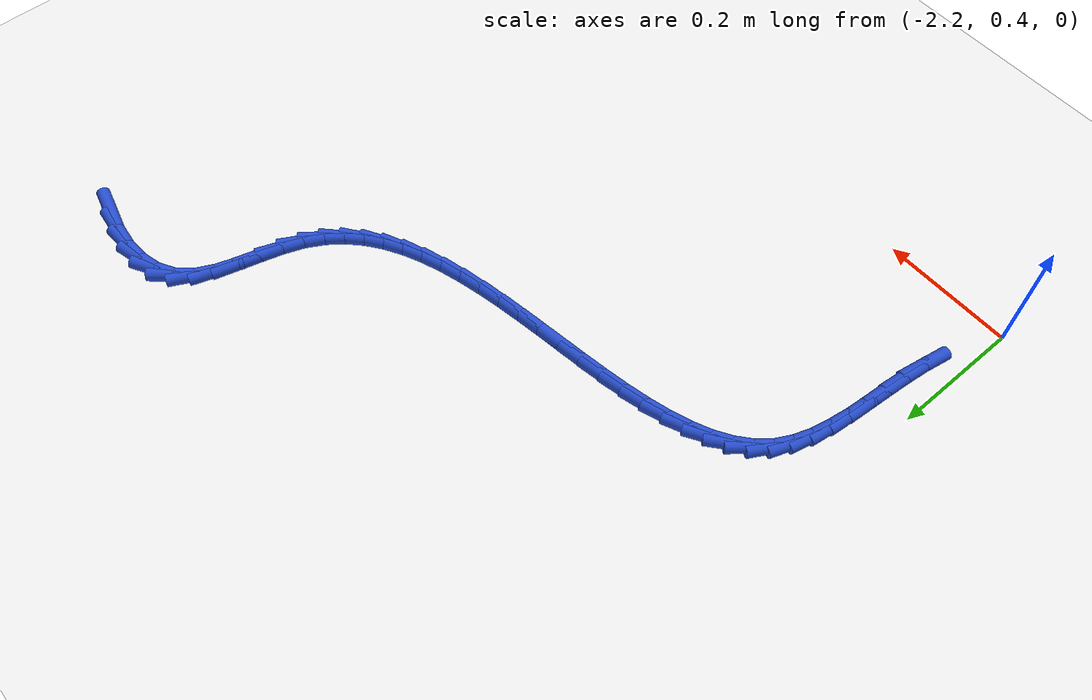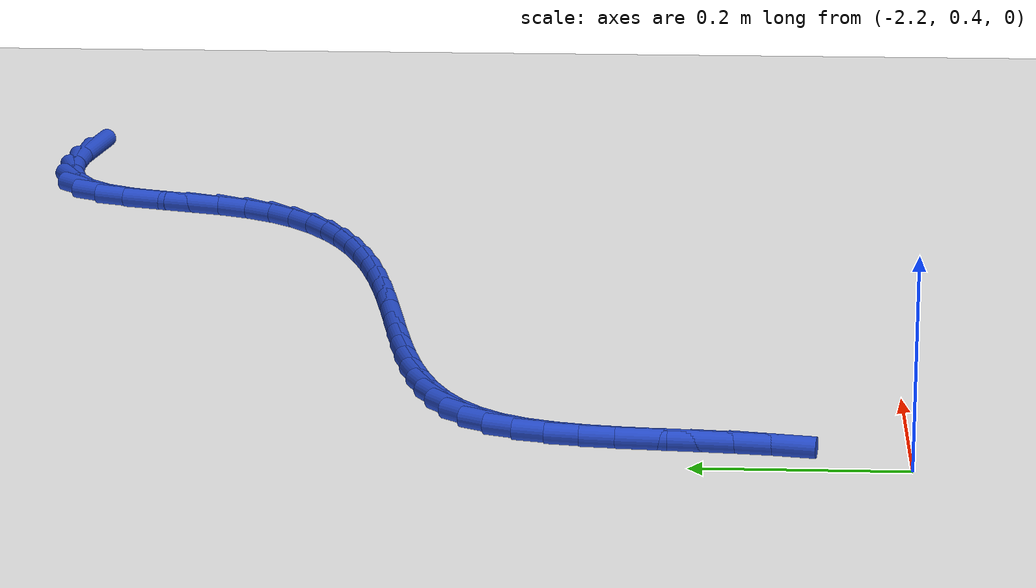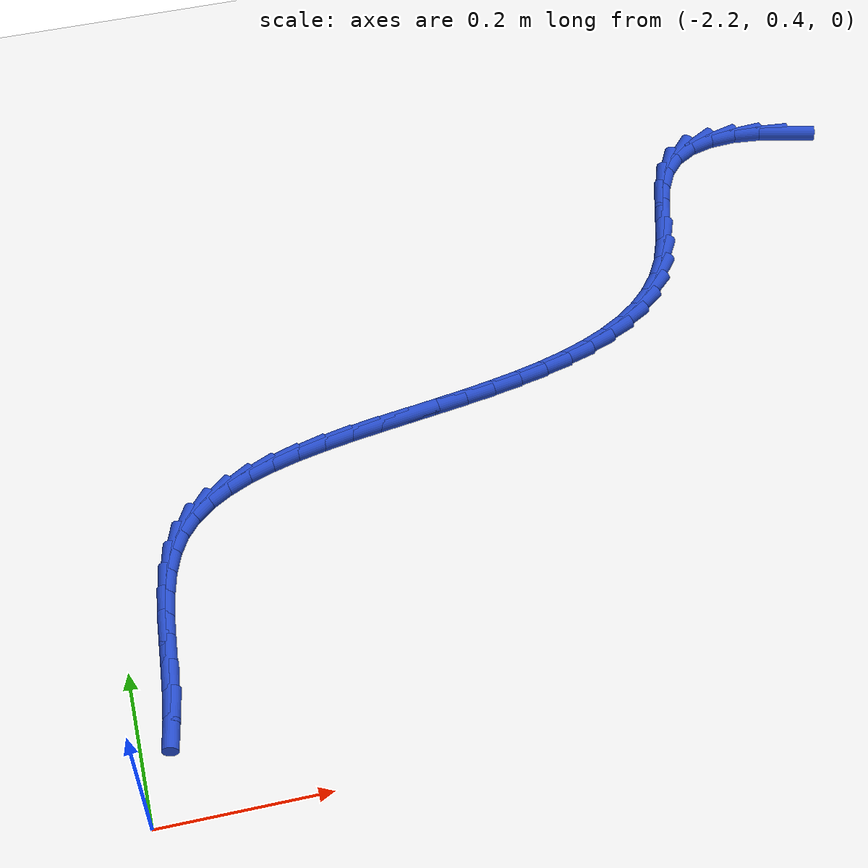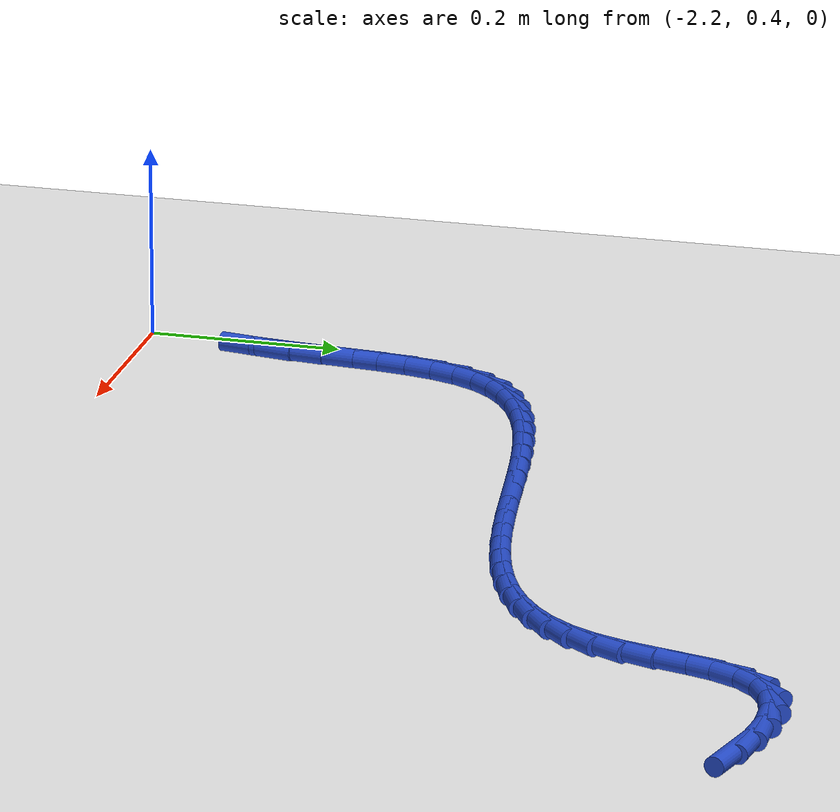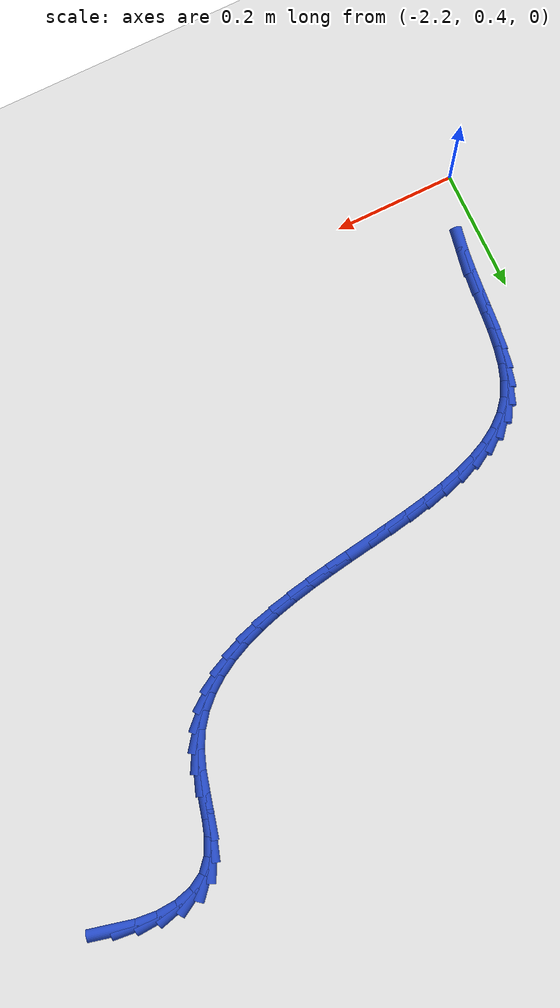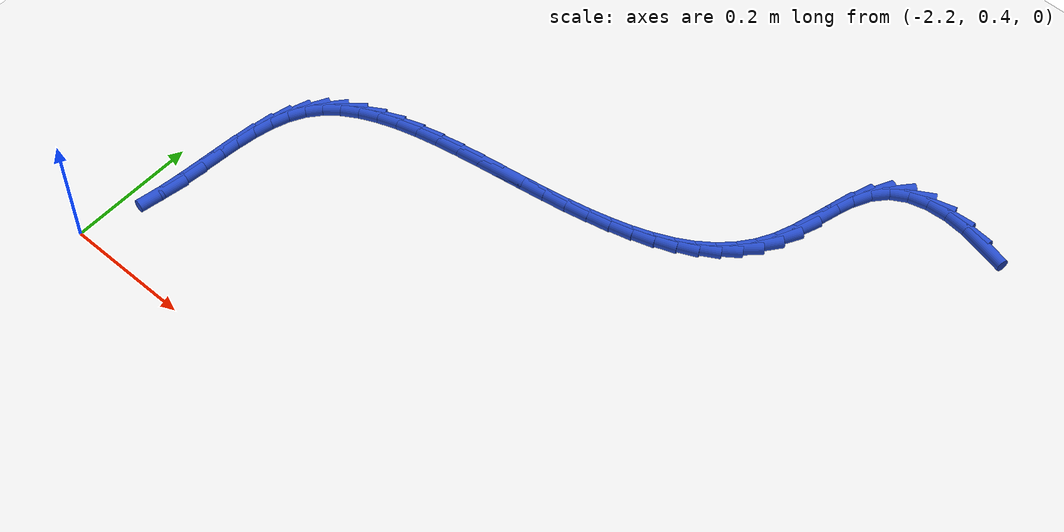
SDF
<sdf version="1.6">
 <world name="default">
  <model name="ground_plane">
   <static>1</static>
   <link name="link">
    <collision name="collision">
     <geometry><plane><normal>0 0 1</normal><size>100 100</size></plane></geometry>
     <surface><friction><ode><mu>100</mu><mu2>50</mu2></ode></friction></surface>
    </collision>
    <visual name="visual">
     <cast_shadows>0</cast_shadows>
     <geometry><plane><normal>0 0 1</normal><size>100 100</size></plane></geometry>
     <material>
      <script><uri>file://media/materials/scripts/gazebo.material</uri><name>Gazebo/WhiteGlow</name></script>
     </material>
    </visual>
   </link>
  </model>
  <model name="line">
   <link name="link_62">
    <pose>-1.2118288288986172 1.2419107498552322 0.01 0 1.57 -0.23743243432189245</pose>
    <collision name="collision">
     <geometry><cylinder><radius>0.01</radius><length>0.08</length></cylinder></geometry>
    </collision>
    <visual name="visual">
     <material>
      <script><name>Gazebo/Blue</name><uri>file://media/materials/scripts/gazebo.material</uri></script>
     </material>
     <geometry><cylinder><radius>0.01</radius><length>0.08</length></cylinder></geometry>
    </visual>
   </link>
   <link name="link_63">
    <pose>-1.2469842184208553 1.25041825139395 0.01 0 1.57 -0.09988791679510114</pose>
    <collision name="collision">
     <geometry><cylinder><radius>0.01</radius><length>0.08</length></cylinder></geometry>
    </collision>
    <visual name="visual">
     <material>
      <script><name>Gazebo/Blue</name><uri>file://media/materials/scripts/gazebo.material</uri></script>
     </material>
     <geometry><cylinder><radius>0.01</radius><length>0.08</length></cylinder></geometry>
    </visual>
   </link>
   <link name="link_64">
    <pose>-1.2821237734833864 1.253939988969543 0.01 0 1.57 0.060084258238647714</pose>
    <collision name="collision">
     <geometry><cylinder><radius>0.01</radius><length>0.08</length></cylinder></geometry>
    </collision>
    <visual name="visual">
     <material>
      <script><name>Gazebo/Blue</name><uri>file://media/materials/scripts/gazebo.material</uri></script>
     </material>
     <geometry><cylinder><radius>0.01</radius><length>0.08</length></cylinder></geometry>
    </visual>
   </link>
   <link name="link_65">
    <pose>-1.3155817790789972 1.2519272668832555 0.01 0 1.57 0.2626583918782028</pose>
    <collision name="collision">
     <geometry><cylinder><radius>0.01</radius><length>0.08</length></cylinder></geometry>
    </collision>
    <visual name="visual">
     <material>
      <script><name>Gazebo/Blue</name><uri>file://media/materials/scripts/gazebo.material</uri></script>
     </material>
     <geometry><cylinder><radius>0.01</radius><length>0.08</length></cylinder></geometry>
    </visual>
   </link>
   <link name="link_66">
    <pose>-1.345692520200476 1.2438313894363324 0.01 0 1.57 0.5306678028779322</pose>
    <collision name="collision">
     <geometry><cylinder><radius>0.01</radius><length>0.08</length></cylinder></geometry>
    </collision>
    <visual name="visual">
     <material>
      <script><name>Gazebo/Blue</name><uri>file://media/materials/scripts/gazebo.material</uri></script>
     </material>
     <geometry><cylinder><radius>0.01</radius><length>0.08</length></cylinder></geometry>
    </visual>
   </link>
   <link name="link_67">
    <pose>-1.3707902818406101 1.2291036609300183 0.01 0 1.57 0.8563380506973972</pose>
    <collision name="collision">
     <geometry><cylinder><radius>0.01</radius><length>0.08</length></cylinder></geometry>
    </collision>
    <visual name="visual">
     <material>
      <script><name>Gazebo/Blue</name><uri>file://media/materials/scripts/gazebo.material</uri></script>
     </material>
     <geometry><cylinder><radius>0.01</radius><length>0.08</length></cylinder></geometry>
    </visual>
   </link>
   <link name="link_68">
    <pose>-1.3895720739905304 1.2074484506383139 0.01 0 1.57 1.1120986576306837</pose>
    <collision name="collision">
     <geometry><cylinder><radius>0.01</radius><length>0.08</length></cylinder></geometry>
    </collision>
    <visual name="visual">
     <material>
      <script><name>Gazebo/Blue</name><uri>file://media/materials/scripts/gazebo.material</uri></script>
     </material>
     <geometry><cylinder><radius>0.01</radius><length>0.08</length></cylinder></geometry>
    </visual>
   </link>
   <link name="link_69">
    <pose>-1.4030391173541448 1.1801777231868378 0.01 0 1.57 1.2566165600133836</pose>
    <collision name="collision">
     <geometry><cylinder><radius>0.01</radius><length>0.08</length></cylinder></geometry>
    </collision>
    <visual name="visual">
     <material>
      <script><name>Gazebo/Blue</name><uri>file://media/materials/scripts/gazebo.material</uri></script>
     </material>
     <geometry><cylinder><radius>0.01</radius><length>0.08</length></cylinder></geometry>
    </visual>
   </link>
   <link name="link_70">
    <pose>-1.413094484297559 1.1492326445724028 0.01 0 1.57 1.3149127487283294</pose>
    <collision name="collision">
     <geometry><cylinder><radius>0.01</radius><length>0.08</length></cylinder></geometry>
    </collision>
    <visual name="visual">
     <material>
      <script><name>Gazebo/Blue</name><uri>file://media/materials/scripts/gazebo.material</uri></script>
     </material>
     <geometry><cylinder><radius>0.01</radius><length>0.08</length></cylinder></geometry>
    </visual>
   </link>
   <link name="link_71">
    <pose>-1.4216433435323852 1.1165558433643519 0.01 0 1.57 1.3018746904283214</pose>
    <collision name="collision">
     <geometry><cylinder><radius>0.01</radius><length>0.08</length></cylinder></geometry>
    </collision>
    <visual name="visual">
     <material>
      <script><name>Gazebo/Blue</name><uri>file://media/materials/scripts/gazebo.material</uri></script>
     </material>
     <geometry><cylinder><radius>0.01</radius><length>0.08</length></cylinder></geometry>
    </visual>
   </link>
   <link name="link_72">
    <pose>-1.4305908637702358 1.0840899481320279 0.01 0 1.57 1.2155913460579286</pose>
    <collision name="collision">
     <geometry><cylinder><radius>0.01</radius><length>0.08</length></cylinder></geometry>
    </collision>
    <visual name="visual">
     <material>
      <script><name>Gazebo/Blue</name><uri>file://media/materials/scripts/gazebo.material</uri></script>
     </material>
     <geometry><cylinder><radius>0.01</radius><length>0.08</length></cylinder></geometry>
    </visual>
   </link>
   <link name="link_73">
    <pose>-1.441836882776654 1.0537721863082523 0.01 0 1.57 1.0692233004066602</pose>
    <collision name="collision">
     <geometry><cylinder><radius>0.01</radius><length>0.08</length></cylinder></geometry>
    </collision>
    <visual name="visual">
     <material>
      <script><name>Gazebo/Blue</name><uri>file://media/materials/scripts/gazebo.material</uri></script>
     </material>
     <geometry><cylinder><radius>0.01</radius><length>0.08</length></cylinder></geometry>
    </visual>
   </link>
   <link name="link_74">
    <pose>-1.4565998762905161 1.0268494520756122 0.01 0 1.57 0.9159213600054446</pose>
    <collision name="collision">
     <geometry><cylinder><radius>0.01</radius><length>0.08</length></cylinder></geometry>
    </collision>
    <visual name="visual">
     <material>
      <script><name>Gazebo/Blue</name><uri>file://media/materials/scripts/gazebo.material</uri></script>
     </material>
     <geometry><cylinder><radius>0.01</radius><length>0.08</length></cylinder></geometry>
    </visual>
   </link>
   <link name="link_75">
    <pose>-1.4747550160055454 1.0032076488199582 0.01 0 1.57 0.7703373264588408</pose>
    <collision name="collision">
     <geometry><cylinder><radius>0.01</radius><length>0.08</length></cylinder></geometry>
    </collision>
    <visual name="visual">
     <material>
      <script><name>Gazebo/Blue</name><uri>file://media/materials/scripts/gazebo.material</uri></script>
     </material>
     <geometry><cylinder><radius>0.01</radius><length>0.08</length></cylinder></geometry>
    </visual>
   </link>
   <link name="link_76">
    <pose>-1.496020308518006 0.9825734454991768 0.01 0 1.57 0.6389659121258919</pose>
    <collision name="collision">
     <geometry><cylinder><radius>0.01</radius><length>0.08</length></cylinder></geometry>
    </collision>
    <visual name="visual">
     <material>
      <script><name>Gazebo/Blue</name><uri>file://media/materials/scripts/gazebo.material</uri></script>
     </material>
     <geometry><cylinder><radius>0.01</radius><length>0.08</length></cylinder></geometry>
    </visual>
   </link>
   <link name="link_77">
    <pose>-1.5201137604241621 0.9646735110711552 0.01 0 1.57 0.5252471715785937</pose>
    <collision name="collision">
     <geometry><cylinder><radius>0.01</radius><length>0.08</length></cylinder></geometry>
    </collision>
    <visual name="visual">
     <material>
      <script><name>Gazebo/Blue</name><uri>file://media/materials/scripts/gazebo.material</uri></script>
     </material>
     <geometry><cylinder><radius>0.01</radius><length>0.08</length></cylinder></geometry>
    </visual>
   </link>
   <link name="link_78">
    <pose>-1.546753378320279 0.9492345144937804 0.01 0 1.57 0.42987146780674884</pose>
    <collision name="collision">
     <geometry><cylinder><radius>0.01</radius><length>0.08</length></cylinder></geometry>
    </collision>
    <visual name="visual">
     <material>
      <script><name>Gazebo/Blue</name><uri>file://media/materials/scripts/gazebo.material</uri></script>
     </material>
     <geometry><cylinder><radius>0.01</radius><length>0.08</length></cylinder></geometry>
    </visual>
   </link>
   <link name="link_79">
    <pose>-1.5756571688026197 0.9359831247249392 0.01 0 1.57 0.35179460677984464</pose>
    <collision name="collision">
     <geometry><cylinder><radius>0.01</radius><length>0.08</length></cylinder></geometry>
    </collision>
    <visual name="visual">
     <material>
      <script><name>Gazebo/Blue</name><uri>file://media/materials/scripts/gazebo.material</uri></script>
     </material>
     <geometry><cylinder><radius>0.01</radius><length>0.08</length></cylinder></geometry>
    </visual>
   </link>
   <link name="link_80">
    <pose>-1.60654313846745 0.9246460107225188 0.01 0 1.57 0.28921204994607214</pose>
    <collision name="collision">
     <geometry><cylinder><radius>0.01</radius><length>0.08</length></cylinder></geometry>
    </collision>
    <visual name="visual">
     <material>
      <script><name>Gazebo/Blue</name><uri>file://media/materials/scripts/gazebo.material</uri></script>
     </material>
     <geometry><cylinder><radius>0.01</radius><length>0.08</length></cylinder></geometry>
    </visual>
   </link>
   <link name="link_81">
    <pose>-1.6391292939110333 0.9149498414444062 0.01 0 1.57 0.24019764785374753</pose>
    <collision name="collision">
     <geometry><cylinder><radius>0.01</radius><length>0.08</length></cylinder></geometry>
    </collision>
    <visual name="visual">
     <material>
      <script><name>Gazebo/Blue</name><uri>file://media/materials/scripts/gazebo.material</uri></script>
     </material>
     <geometry><cylinder><radius>0.01</radius><length>0.08</length></cylinder></geometry>
    </visual>
   </link>
   <link name="link_82">
    <pose>-1.6731336417296343 0.9066212858484879 0.01 0 1.57 0.2030303250459767</pose>
    <collision name="collision">
     <geometry><cylinder><radius>0.01</radius><length>0.08</length></cylinder></geometry>
    </collision>
    <visual name="visual">
     <material>
      <script><name>Gazebo/Blue</name><uri>file://media/materials/scripts/gazebo.material</uri></script>
     </material>
     <geometry><cylinder><radius>0.01</radius><length>0.08</length></cylinder></geometry>
    </visual>
   </link>
   <link name="link_83">
    <pose>-1.7082741885195176 0.8993870128926512 0.01 0 1.57 0.17632347654746275</pose>
    <collision name="collision">
     <geometry><cylinder><radius>0.01</radius><length>0.08</length></cylinder></geometry>
    </collision>
    <visual name="visual">
     <material>
      <script><name>Gazebo/Blue</name><uri>file://media/materials/scripts/gazebo.material</uri></script>
     </material>
     <geometry><cylinder><radius>0.01</radius><length>0.08</length></cylinder></geometry>
    </visual>
   </link>
   <link name="link_84">
    <pose>-1.744268940876948 0.8929736915347836 0.01 0 1.57 0.1590548432384335</pose>
    <collision name="collision">
     <geometry><cylinder><radius>0.01</radius><length>0.08</length></cylinder></geometry>
    </collision>
    <visual name="visual">
     <material>
      <script><name>Gazebo/Blue</name><uri>file://media/materials/scripts/gazebo.material</uri></script>
     </material>
     <geometry><cylinder><radius>0.01</radius><length>0.08</length></cylinder></geometry>
    </visual>
   </link>
   <link name="link_85">
    <pose>-1.7808359053981884 0.8871079907327709 0.01 0 1.57 0.15055680650545916</pose>
    <collision name="collision">
     <geometry><cylinder><radius>0.01</radius><length>0.08</length></cylinder></geometry>
    </collision>
    <visual name="visual">
     <material>
      <script><name>Gazebo/Blue</name><uri>file://media/materials/scripts/gazebo.material</uri></script>
     </material>
     <geometry><cylinder><radius>0.01</radius><length>0.08</length></cylinder></geometry>
    </visual>
   </link>
   <link name="link_86">
    <pose>-1.8176930886795046 0.881516579444501 0.01 0 1.57 0.1507775496529919</pose>
    <collision name="collision">
     <geometry><cylinder><radius>0.01</radius><length>0.08</length></cylinder></geometry>
    </collision>
    <visual name="visual">
     <material>
      <script><name>Gazebo/Blue</name><uri>file://media/materials/scripts/gazebo.material</uri></script>
     </material>
     <geometry><cylinder><radius>0.01</radius><length>0.08</length></cylinder></geometry>
    </visual>
   </link>
   <link name="link_87">
    <pose>-1.854540192243037 0.8759183760804823 0.01 0 1.57 0.1613864053262692</pose>
    <collision name="collision">
     <geometry><cylinder><radius>0.01</radius><length>0.08</length></cylinder></geometry>
    </collision>
    <visual name="visual">
     <material>
      <script><name>Gazebo/Blue</name><uri>file://media/materials/scripts/gazebo.material</uri></script>
     </material>
     <geometry><cylinder><radius>0.01</radius><length>0.08</length></cylinder></geometry>
    </visual>
   </link>
   <link name="link_88">
    <pose>-1.8909708372293805 0.8699873835803822 0.01 0 1.57 0.18362560352170654</pose>
    <collision name="collision">
     <geometry><cylinder><radius>0.01</radius><length>0.08</length></cylinder></geometry>
    </collision>
    <visual name="visual">
     <material>
      <script><name>Gazebo/Blue</name><uri>file://media/materials/scripts/gazebo.material</uri></script>
     </material>
     <geometry><cylinder><radius>0.01</radius><length>0.08</length></cylinder></geometry>
    </visual>
   </link>
   <link name="link_89">
    <pose>-1.9265405237379412 0.8633814640622648 0.01 0 1.57 0.2189121079842505</pose>
    <collision name="collision">
     <geometry><cylinder><radius>0.01</radius><length>0.08</length></cylinder></geometry>
    </collision>
    <visual name="visual">
     <material>
      <script><name>Gazebo/Blue</name><uri>file://media/materials/scripts/gazebo.material</uri></script>
     </material>
     <geometry><cylinder><radius>0.01</radius><length>0.08</length></cylinder></geometry>
    </visual>
   </link>
   <link name="link_90">
    <pose>-1.960804702046029 0.8557584585490325 0.01 0 1.57 0.2695343758239932</pose>
    <collision name="collision">
     <geometry><cylinder><radius>0.01</radius><length>0.08</length></cylinder></geometry>
    </collision>
    <visual name="visual">
     <material>
      <script><name>Gazebo/Blue</name><uri>file://media/materials/scripts/gazebo.material</uri></script>
     </material>
     <geometry><cylinder><radius>0.01</radius><length>0.08</length></cylinder></geometry>
    </visual>
   </link>
   <link name="link_91">
    <pose>-1.9933188224309564 0.8467762080635889 0.01 0 1.57 0.33878366899125506</pose>
    <collision name="collision">
     <geometry><cylinder><radius>0.01</radius><length>0.08</length></cylinder></geometry>
    </collision>
    <visual name="visual">
     <material>
      <script><name>Gazebo/Blue</name><uri>file://media/materials/scripts/gazebo.material</uri></script>
     </material>
     <geometry><cylinder><radius>0.01</radius><length>0.08</length></cylinder></geometry>
    </visual>
   </link>
   <link name="link_92">
    <pose>-2.0236383351700358 0.8360925536288369 0.01 0 1.57 0.430967393451946</pose>
    <collision name="collision">
     <geometry><cylinder><radius>0.01</radius><length>0.08</length></cylinder></geometry>
    </collision>
    <visual name="visual">
     <material>
      <script><name>Gazebo/Blue</name><uri>file://media/materials/scripts/gazebo.material</uri></script>
     </material>
     <geometry><cylinder><radius>0.01</radius><length>0.08</length></cylinder></geometry>
    </visual>
   </link>
   <link name="link_93">
    <pose>-2.0513186905405787 0.8233653362676795 0.01 0 1.57 0.5509628938760853</pose>
    <collision name="collision">
     <geometry><cylinder><radius>0.01</radius><length>0.08</length></cylinder></geometry>
    </collision>
    <visual name="visual">
     <material>
      <script><name>Gazebo/Blue</name><uri>file://media/materials/scripts/gazebo.material</uri></script>
     </material>
     <geometry><cylinder><radius>0.01</radius><length>0.08</length></cylinder></geometry>
    </visual>
   </link>
   <link name="link_94">
    <pose>-2.075915338819897 0.8082523970030198 0.01 0 1.57 0.702636300371727</pose>
    <collision name="collision">
     <geometry><cylinder><radius>0.01</radius><length>0.08</length></cylinder></geometry>
    </collision>
    <visual name="visual">
     <material>
      <script><name>Gazebo/Blue</name><uri>file://media/materials/scripts/gazebo.material</uri></script>
     </material>
     <geometry><cylinder><radius>0.01</radius><length>0.08</length></cylinder></geometry>
    </visual>
   </link>
   <link name="link_95">
    <pose>-2.0969837302853023 0.7904115768577605 0.01 0 1.57 0.8854452185473248</pose>
    <collision name="collision">
     <geometry><cylinder><radius>0.01</radius><length>0.08</length></cylinder></geometry>
    </collision>
    <visual name="visual">
     <material>
      <script><name>Gazebo/Blue</name><uri>file://media/materials/scripts/gazebo.material</uri></script>
     </material>
     <geometry><cylinder><radius>0.01</radius><length>0.08</length></cylinder></geometry>
    </visual>
   </link>
   <link name="link_96">
    <pose>-2.1140793759104684 0.7695007587439333 0.01 0 1.57 1.0795006526661615</pose>
    <collision name="collision">
     <geometry><cylinder><radius>0.01</radius><length>0.08</length></cylinder></geometry>
    </collision>
    <visual name="visual">
     <material>
      <script><name>Gazebo/Blue</name><uri>file://media/materials/scripts/gazebo.material</uri></script>
     </material>
     <geometry><cylinder><radius>0.01</radius><length>0.08</length></cylinder></geometry>
    </visual>
   </link>
   <link name="link_97">
    <pose>-2.127002927347472 0.7453470075316855 0.01 0 1.57 1.2374409217592113</pose>
    <collision name="collision">
     <geometry><cylinder><radius>0.01</radius><length>0.08</length></cylinder></geometry>
    </collision>
    <visual name="visual">
     <material>
      <script><name>Gazebo/Blue</name><uri>file://media/materials/scripts/gazebo.material</uri></script>
     </material>
     <geometry><cylinder><radius>0.01</radius><length>0.08</length></cylinder></geometry>
    </visual>
   </link>
   <link name="link_98">
    <pose>-2.136357833809828 0.7183314326679359 0.01 0 1.57 1.351341885807343</pose>
    <collision name="collision">
     <geometry><cylinder><radius>0.01</radius><length>0.08</length></cylinder></geometry>
    </collision>
    <visual name="visual">
     <material>
      <script><name>Gazebo/Blue</name><uri>file://media/materials/scripts/gazebo.material</uri></script>
     </material>
     <geometry><cylinder><radius>0.01</radius><length>0.08</length></cylinder></geometry>
    </visual>
   </link>
   <link name="link_99">
    <pose>-2.142911624789298 0.6889483823445658 0.01 0 1.57 1.4271740874860088</pose>
    <collision name="collision">
     <geometry><cylinder><radius>0.01</radius><length>0.08</length></cylinder></geometry>
    </collision>
    <visual name="visual">
     <material>
      <script><name>Gazebo/Blue</name><uri>file://media/materials/scripts/gazebo.material</uri></script>
     </material>
     <geometry><cylinder><radius>0.01</radius><length>0.08</length></cylinder></geometry>
    </visual>
   </link>
   <link name="link_100">
    <pose>-2.1474318297776387 0.6576922047534554 0.01 0 1.57 1.4714112626567963</pose>
    <collision name="collision">
     <geometry><cylinder><radius>0.01</radius><length>0.08</length></cylinder></geometry>
    </collision>
    <visual name="visual">
     <material>
      <script><name>Gazebo/Blue</name><uri>file://media/materials/scripts/gazebo.material</uri></script>
     </material>
     <geometry><cylinder><radius>0.01</radius><length>0.08</length></cylinder></geometry>
    </visual>
   </link>
   <link name="link_101">
    <pose>-2.1506859782666106 0.625057248086486 0.01 0 1.57 1.4887710027441543</pose>
    <collision name="collision">
     <geometry><cylinder><radius>0.01</radius><length>0.08</length></cylinder></geometry>
    </collision>
    <visual name="visual">
     <material>
      <script><name>Gazebo/Blue</name><uri>file://media/materials/scripts/gazebo.material</uri></script>
     </material>
     <geometry><cylinder><radius>0.01</radius><length>0.08</length></cylinder></geometry>
    </visual>
   </link>
   <link name="link_102">
    <pose>-2.1534415997479734 0.5915378605355385 0.01 0 1.57 1.4818347297627663</pose>
    <collision name="collision">
     <geometry><cylinder><radius>0.01</radius><length>0.08</length></cylinder></geometry>
    </collision>
    <visual name="visual">
     <material>
      <script><name>Gazebo/Blue</name><uri>file://media/materials/scripts/gazebo.material</uri></script>
     </material>
     <geometry><cylinder><radius>0.01</radius><length>0.08</length></cylinder></geometry>
    </visual>
   </link>
   <link name="link_103">
    <pose>-2.1564662237134864 0.5576283902924937 0.01 0 1.57 1.4512352620738778</pose>
    <collision name="collision">
     <geometry><cylinder><radius>0.01</radius><length>0.08</length></cylinder></geometry>
    </collision>
    <visual name="visual">
     <material>
      <script><name>Gazebo/Blue</name><uri>file://media/materials/scripts/gazebo.material</uri></script>
     </material>
     <geometry><cylinder><radius>0.01</radius><length>0.08</length></cylinder></geometry>
    </visual>
   </link>
   <link name="link_104">
    <pose>-2.160527379654908 0.5238231855492324 0.01 0 1.57 1.3959713677406287</pose>
    <collision name="collision">
     <geometry><cylinder><radius>0.01</radius><length>0.08</length></cylinder></geometry>
    </collision>
    <visual name="visual">
     <material>
      <script><name>Gazebo/Blue</name><uri>file://media/materials/scripts/gazebo.material</uri></script>
     </material>
     <geometry><cylinder><radius>0.01</radius><length>0.08</length></cylinder></geometry>
    </visual>
   </link>
  </model>
 </world>
</sdf>
